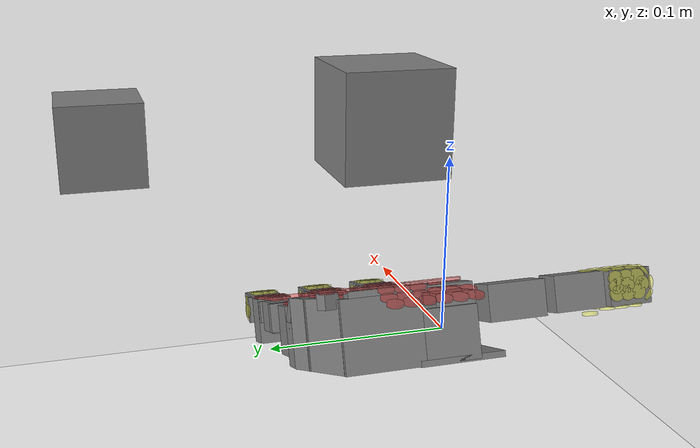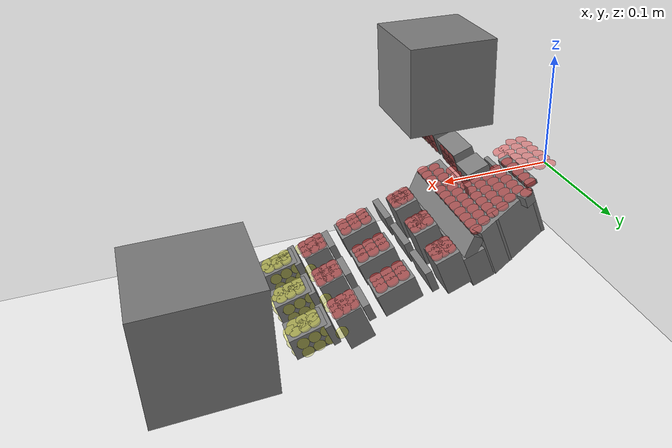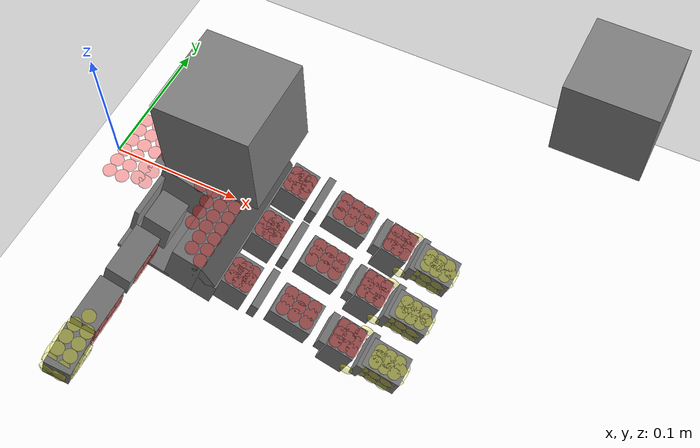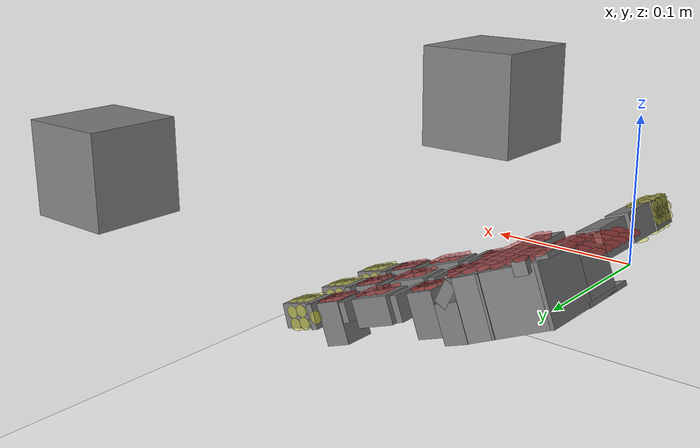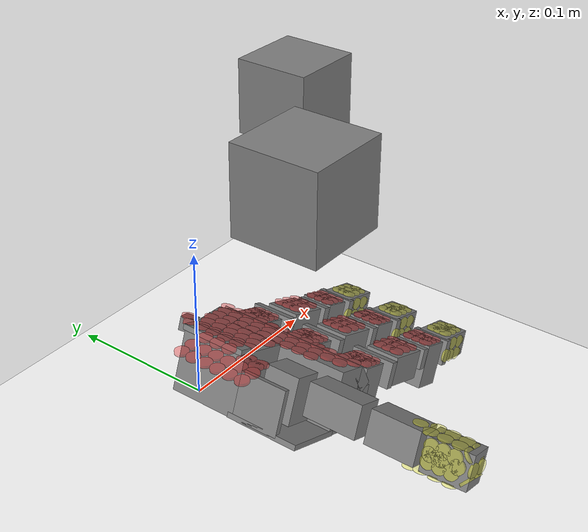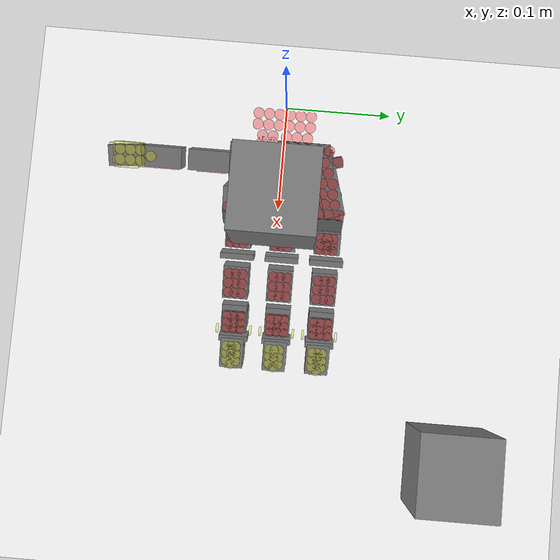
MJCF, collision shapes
<mujoco model="leap_scene">
  <include file="leap_rh_touch_circle_detail_mjx.xml"/>
  <include file="reorientation_cube.xml"/>

  <statistic center="0.15 0 0" extent="0.4" meansize="0.01"/>

  <visual>
    <headlight diffuse=".8 .8 .8" ambient=".2 .2 .2" specular="1 1 1"/>
    <rgba force="1 0 0 1"/>
    <global azimuth="120" elevation="-20"/>
    <map force="0.01" stiffness="500"/>
    <scale forcewidth="0.1" contactwidth="0.5" contactheight="0.2"/>
    <quality shadowsize="8192"/>
  </visual>

  <asset>
    <texture type="skybox" builtin="gradient" rgb1="1 1 1" rgb2="1 1 1" width="800" height="800"/>
    <texture type="2d" name="groundplane" builtin="checker" mark="edge" rgb1="1 1 1" rgb2="1 1 1" markrgb="0 0 0"
      width="300" height="300"/>
    <material name="groundplane" texture="groundplane" texuniform="true" texrepeat="5 5" reflectance="0"/>
  </asset>

  <worldbody>
    <camera name="side" pos="-0.183 0.396 0.296" xyaxes="-0.783 -0.622 -0.000 0.332 -0.419 0.845"/>
    <geom name="floor" pos="0 0 -0.25" size="0 0 0.01" type="plane" material="groundplane" contype="2" conaffinity="2"/>
    <body name="goal" mocap="true" pos="0.325 0.17 0.0475">
      <geom type="mesh" mesh="cube_mesh" material="dexcube" contype="0" conaffinity="0" density="0" group="2"/>
      <geom type="box" size=".035 .035 .035" mass=".108" group="3"/>
    </body>
  </worldbody>

  <sensor>
    <!-- cube. -->
    <framepos name="cube_position" objtype="body" objname="cube"/>
    <framequat name="cube_orientation" objtype="body" objname="cube"/>
    <framelinvel name="cube_linvel" objtype="body" objname="cube"/>
    <frameangvel name="cube_angvel" objtype="body" objname="cube"/>
    <frameangacc name="cube_angacc" objtype="body" objname="cube"/>
    <framezaxis name="cube_upvector" objtype="body" objname="cube"/>

    <!-- hand. -->
    <framepos name="palm_position" objtype="site" objname="grasp_site"/>
    <framepos name="th_tip_position" objtype="site" objname="th_tip" reftype="site" refname="grasp_site"/>
    <framepos name="if_tip_position" objtype="site" objname="if_tip" reftype="site" refname="grasp_site"/>
    <framepos name="mf_tip_position" objtype="site" objname="mf_tip" reftype="site" refname="grasp_site"/>
    <framepos name="rf_tip_position" objtype="site" objname="rf_tip" reftype="site" refname="grasp_site"/>

    <!-- goal. -->
    <framequat name="cube_goal_orientation" objtype="body" objname="goal"/>
    <framezaxis name="cube_goal_upvector" objtype="body" objname="goal"/>
  </sensor>

  <keyframe>
    <key name="home"
      qpos="
      0.8 0 0.8 0.8
      0.8 0 0.8 0.8
      0.8 0 0.8 0.8
      0.8 0.8 0.8 0
      0.1 0.0 0.05 0.810967 -0.00262895 -0.585086 -0.000254303"
      ctrl="
      0.8 0 0.8 0.8
      0.8 0 0.8 0.8
      0.8 0 0.8 0.8
      0.8 0.8 0.8 0" mpos="0.25 0.16 0"
      mquat="1 0 0 0"/>
  </keyframe>
</mujoco>

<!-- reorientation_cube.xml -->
<mujoco>
  <default>
    <default class="cube">
      <geom friction=".3 0.05" conaffinity="2" condim="3"/>
    </default>
  </default>

  <asset>
    <texture name="cube" type="cube" fileup="reorientation_cube_textures/fileup.png"
      fileback="reorientation_cube_textures/fileback.png" filedown="reorientation_cube_textures/filedown.png"
      filefront="reorientation_cube_textures/filefront.png" fileleft="reorientation_cube_textures/fileleft.png"
      fileright="reorientation_cube_textures/fileright.png"/>
    <material name="cube" texture="cube"/>
    <texture name="graycube" type="cube" fileup="reorientation_cube_textures/grayup.png"
      fileback="reorientation_cube_textures/grayback.png" filedown="reorientation_cube_textures/graydown.png"
      filefront="reorientation_cube_textures/grayfront.png" fileleft="reorientation_cube_textures/grayleft.png"
      fileright="reorientation_cube_textures/grayright.png"/>
    <material name="graycube" texture="graycube"/>
    <texture name="dexcube" type="2d" file="reorientation_cube_textures/dex_cube.png"/>
    <material name="dexcube" texture="dexcube"/>
    <mesh name="cube_mesh" file="meshes/dex_cube.obj" scale="0.035 0.035 0.035"/>
  </asset>

  <worldbody>
    <body name="cube" pos="0.11 0.0 0.1" quat="1 0 0 0" childclass="cube">
      <freejoint name="cube_freejoint"/>
      <geom name="cube" type="box" size=".035 .035 .035" mass=".108" group="3"/>
      <site name="cube_center" pos="0 0 0" group="4"/>
    </body>
  </worldbody>
</mujoco>
